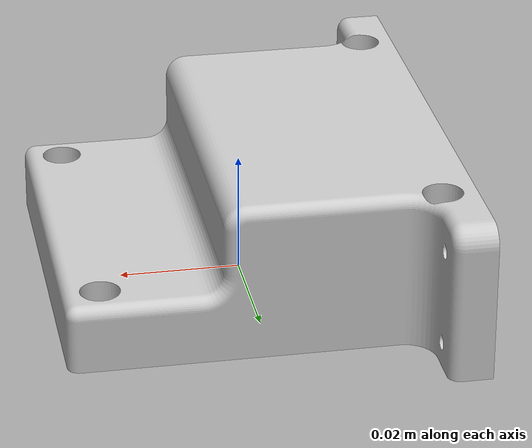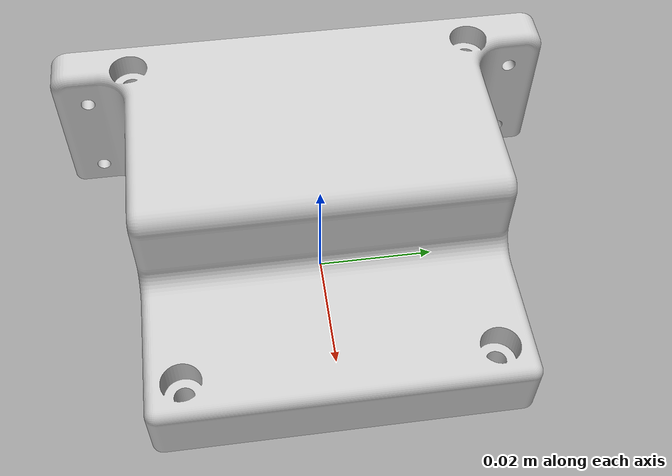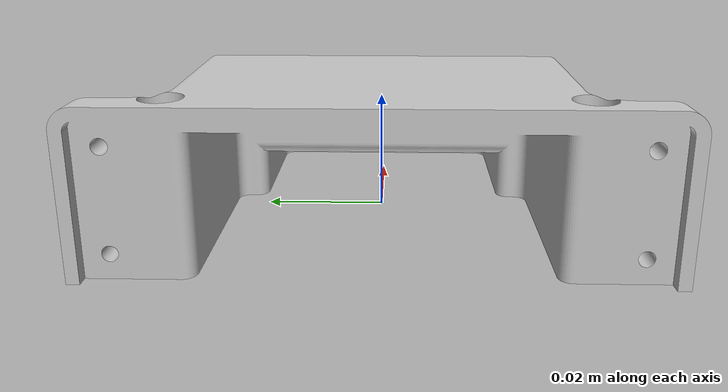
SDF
<?xml version="1.0" ?>
<sdf version="1.6">
  <model name="heating_plate_cover3-2">
    <static>false</static>

    <link name="link">
      <visual name="visual">
        <geometry>
          <mesh>
            <uri>file:///root/workcell_ws_classic/src/Universal_Robots_ROS2_Description/meshes/ur10_feeder/heating_plate_cover3-2.STL</uri>
            <scale>1 1 1</scale>
          </mesh>
        </geometry>
        <material>
          <ambient>0.8 0.8 0.8 1</ambient>
          <diffuse>0.8 0.8 0.8 1</diffuse>
          <specular>0.2 0.2 0.2 1</specular>
          <emissive>0 0 0 1</emissive>
        </material>
      </visual>

      <collision name="collision">
        <geometry>
          <mesh>
            <uri>file:///root/workcell_ws_classic/src/Universal_Robots_ROS2_Description/meshes/ur10_feeder/heating_plate_cover3-2.STL</uri>
            <scale>1 1 1</scale>
          </mesh>
        </geometry>
      </collision>

      <inertial>
        <mass>0.5</mass>
        <inertia>
          <ixx>0.001</ixx>
          <ixy>0</ixy>
          <ixz>0</ixz>
          <iyy>0.001</iyy>
          <iyz>0</iyz>
          <izz>0.001</izz>
        </inertia>
      </inertial>
    </link>
  </model>
</sdf>
